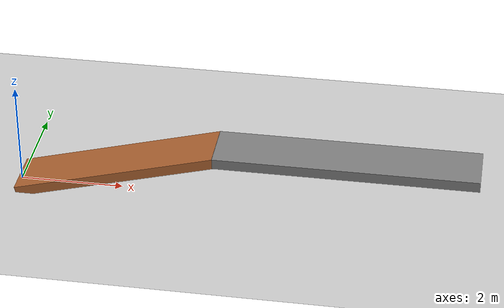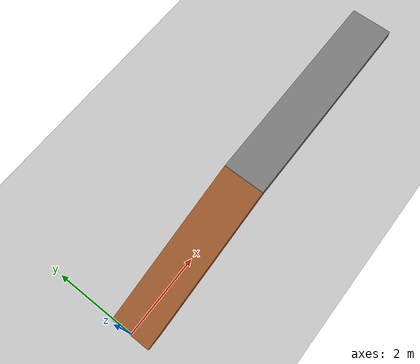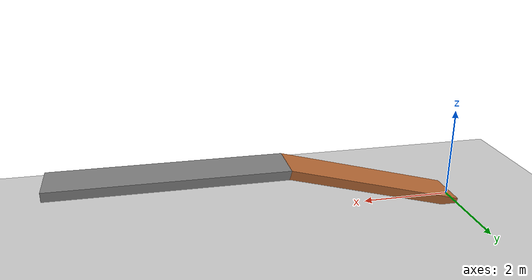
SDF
<sdf version="1.7">
  <world name="default">
    <include>
      <uri>model://ground_plane</uri>
    </include>
    <include>
      <uri>model://sun</uri>
    </include>

    <model name="ramp">
      <pose>1.9318516525781366 0 0.5176380902050415 0 -0.2617993877991494 0</pose>
      <static>true</static>
      <link name="link">
        <collision name="collision">
          <geometry>
            <box>
              <size>4.0 1.0 0.2</size>
            </box>
          </geometry>
        </collision>
        <visual name="visual">
          <geometry>
            <box>
              <size>4.0 1.0 0.2</size>
            </box>
          </geometry>
          <material>
            <ambient>0.7 0.4 0.2 1</ambient>
            <diffuse>0.7 0.4 0.2 1</diffuse>
          </material>
        </visual>
      </link>
    </model>

    <model name="alleyway">
      <pose>6.343703305156273 0 1.035276180410083 0 0 0</pose>
      <static>true</static>
      <link name="link">
        <collision name="collision">
          <geometry>
            <box>
              <size>5.0 1.0 0.2</size>
            </box>
          </geometry>
        </collision>
        <visual name="visual">
          <geometry>
            <box>
              <size>5.0 1.0 0.2</size>
            </box>
          </geometry>
          <material>
            <ambient>0.5 0.5 0.5 1</ambient>
            <diffuse>0.5 0.5 0.5 1</diffuse>
          </material>
        </visual>
      </link>
    </model>
  </world>
</sdf>
